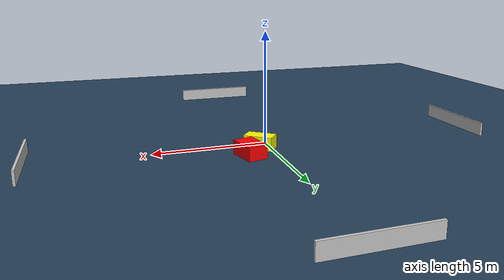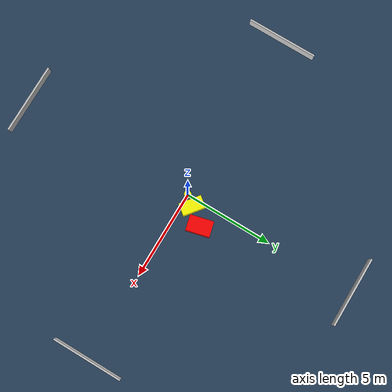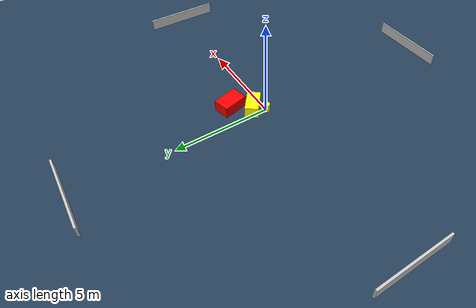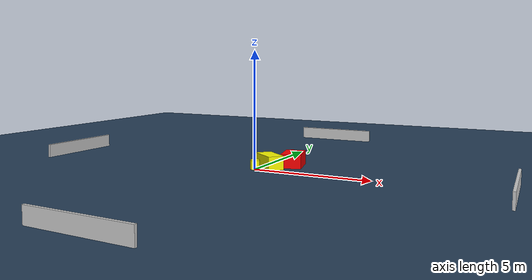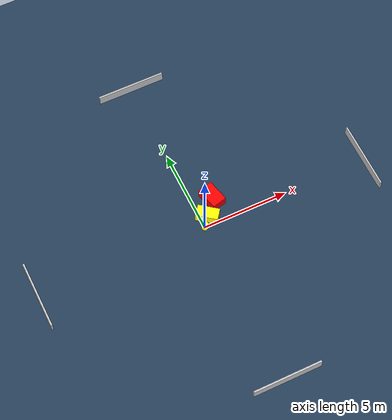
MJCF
<?xml version="1.0" ?>
<mujoco model="generated_environment">
  <option timestep="0.01" integrator="RK4" cone="elliptic"/>
  <default>
    <geom density="1"/>
  </default>
  <asset>
    <texture builtin="gradient" height="3072" name="skybox" rgb1="0.3 0.5 0.7" rgb2="0 0 0" type="skybox" width="512"/>
    <texture builtin="checker" height="300" name="groundplane" rgb1="0.2 0.3 0.4" rgb2="0.1 0.2 0.3" type="2d" width="300"/>
    <material name="groundplane" reflectance="0.2" texrepeat="5 5" texture="groundplane"/>
  </asset>
  <worldbody>
    <light dir="0 0 -1" directional="true" pos="0 0 1.5"/>
    <geom condim="3" friction="0.5 0.005 0.001" material="groundplane" name="floor" pos="0 0 0" size="0 0 0.05" type="plane"/>
    <body name="walls">
      <geom name="wall_1" condim="4" pos="-10.0 0.0 0.3" rgba="0.800000011920929 0.800000011920929 0.800000011920929 1.0" size="0.05 2.0 0.3" type="box"/>
      <geom name="wall_2" condim="4" pos="10.0 0.0 0.3" rgba="0.800000011920929 0.800000011920929 0.800000011920929 1.0" size="0.05 2.0 0.3" type="box"/>
      <geom name="wall_3" condim="4" pos="0.0 -10.0 0.3" rgba="0.800000011920929 0.800000011920929 0.800000011920929 1.0" size="2.0 0.05 0.3" type="box"/>
      <geom name="wall_4" condim="4" pos="0.0 10.0 0.3" rgba="0.800000011920929 0.800000011920929 0.800000011920929 1.0" size="2.0 0.05 0.3" type="box"/>
    </body>
    <body name="robot">
      <joint name="joint_x" type="slide" pos="0 0 0" axis="1 0 0"/>
      <joint name="joint_y" type="slide" pos="0 0 0" axis="0 1 0"/>
      <geom name="robot" type="cylinder" pos="0.0 0.0 0.2" size="0.2 0.2 0.0" mass="5.0" friction="1.0 0.005 0.0001" condim="4" rgba="1.0 1.0 0.0 1.0"/>
    </body>
    <body name="obstacle_1_movable">
      <geom name="obstacle_1_movable" condim="4" pos="0.42424028062796854 0.5225709415110249 0.3" euler="0 0 232.04172765775854" friction="0.0 0.005 0.001" rgba="1.0 1.0 0.0 1.0" size="0.3457339285127299 0.6330377158404561 0.3" type="box" mass="0.1"/>
      <joint type="free"/>
    </body>
    <body name="obstacle_2_static">
      <geom name="obstacle_2_static" condim="4" pos="1.1331678607031044 1.4223586926215883 0.3" euler="0 0 13.81783444082199" friction="0.0 0.005 0.001" rgba="1.0 0.0 0.0 1.0" size="0.43568230636149347 0.6618385646919409 0.3" type="box"/>
    </body>
  </worldbody>
  <actuator>
    <motor name="actuator_x" joint="joint_x" gear="1" ctrlrange="-1 1"/>
    <motor name="actuator_y" joint="joint_y" gear="1" ctrlrange="-1 1"/>
  </actuator>
</mujoco>
